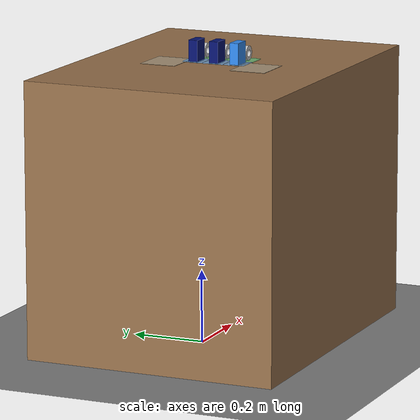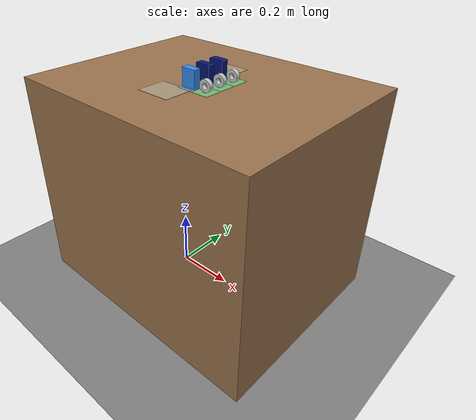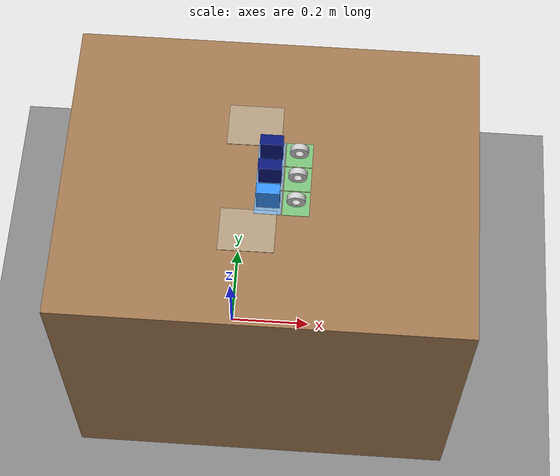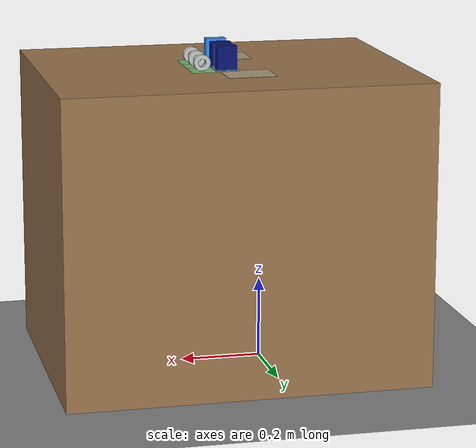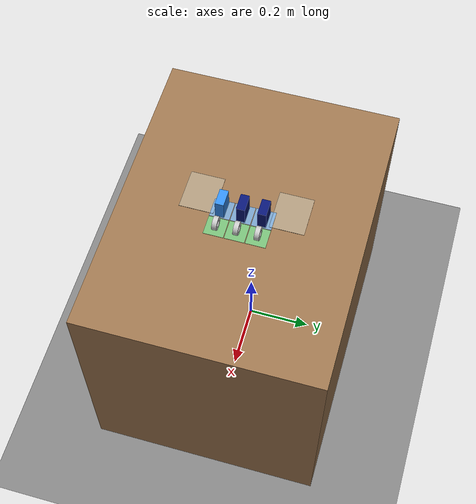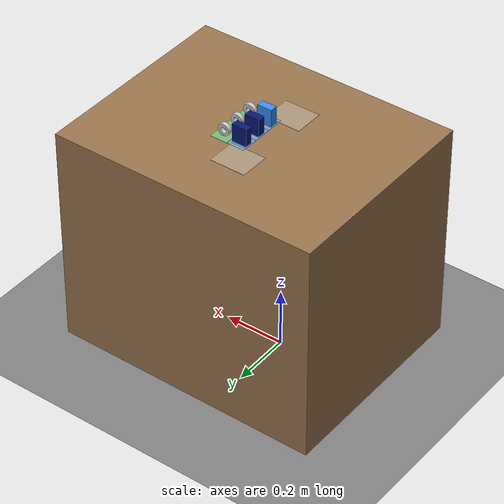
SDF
<?xml version="1.0"?>
<!--
  Experiment 3 - Group 5 sorting simulation world

  Grid 1-3 : Square (gum boxes)
  Grid 4-6 : Circle (tape rolls)

  Bin 1 : Square
  Bin 2 : Circle

  Table top z = 0.750 m
-->
<sdf version="1.8">
  <world name="grasp_world">

    <physics name="default" type="ignored">
      <max_step_size>0.004</max_step_size>
      <real_time_factor>1.0</real_time_factor>
    </physics>

    <plugin filename="libignition-gazebo-physics-system.so"
            name="ignition::gazebo::systems::Physics"/>

    <plugin filename="libignition-gazebo-scene-broadcaster-system.so"
            name="ignition::gazebo::systems::SceneBroadcaster"/>

    <!-- Experiment 3 RGB camera sensor support -->
    <plugin filename="libignition-gazebo-sensors-system.so"
            name="ignition::gazebo::systems::Sensors">
      <render_engine>ogre2</render_engine>
    </plugin>

    <plugin filename="libignition-gazebo-user-commands-system.so"
            name="ignition::gazebo::systems::UserCommands"/>

    <light type="directional" name="sun">
      <cast_shadows>false</cast_shadows>
      <pose>0 0 10 0 0 0</pose>
      <diffuse>0.9 0.9 0.9 1</diffuse>
      <direction>-0.3 0.2 -0.9</direction>
    </light>

    <model name="ground">
      <static>true</static>
      <link name="ground_link">
        <collision name="c">
          <geometry>
            <plane>
              <normal>0 0 1</normal>
              <size>10 10</size>
            </plane>
          </geometry>
        </collision>

        <visual name="v">
          <geometry>
            <plane>
              <normal>0 0 1</normal>
              <size>10 10</size>
            </plane>
          </geometry>
          <material>
            <ambient>0.5 0.5 0.5 1</ambient>
            <diffuse>0.5 0.5 0.5 1</diffuse>
          </material>
        </visual>
      </link>
    </model>

    <!-- Visible 2x3 Grid markers - visual only, no collision -->

    <model name="grid_markers">
      <static>true</static>
      <link name="grid_visuals">

        <!-- Grid 1 -->
        <visual name="grid1">
          <pose>0.10 0.06 0.751 0 0 0</pose>
          <geometry><box><size>0.058 0.058 0.002</size></box></geometry>
          <material>
            <ambient>0.45 0.70 0.95 0.75</ambient>
            <diffuse>0.45 0.70 0.95 0.75</diffuse>
          </material>
        </visual>

        <!-- Grid 2 -->
        <visual name="grid2">
          <pose>0.10 0.00 0.751 0 0 0</pose>
          <geometry><box><size>0.058 0.058 0.002</size></box></geometry>
          <material>
            <ambient>0.45 0.70 0.95 0.75</ambient>
            <diffuse>0.45 0.70 0.95 0.75</diffuse>
          </material>
        </visual>

        <!-- Grid 3 -->
        <visual name="grid3">
          <pose>0.10 -0.06 0.751 0 0 0</pose>
          <geometry><box><size>0.058 0.058 0.002</size></box></geometry>
          <material>
            <ambient>0.45 0.70 0.95 0.75</ambient>
            <diffuse>0.45 0.70 0.95 0.75</diffuse>
          </material>
        </visual>

        <!-- Grid 4 -->
        <visual name="grid4">
          <pose>0.16 0.06 0.751 0 0 0</pose>
          <geometry><box><size>0.058 0.058 0.002</size></box></geometry>
          <material>
            <ambient>0.45 0.85 0.55 0.75</ambient>
            <diffuse>0.45 0.85 0.55 0.75</diffuse>
          </material>
        </visual>

        <!-- Grid 5 -->
        <visual name="grid5">
          <pose>0.16 0.00 0.751 0 0 0</pose>
          <geometry><box><size>0.058 0.058 0.002</size></box></geometry>
          <material>
            <ambient>0.45 0.85 0.55 0.75</ambient>
            <diffuse>0.45 0.85 0.55 0.75</diffuse>
          </material>
        </visual>

        <!-- Grid 6 -->
        <visual name="grid6">
          <pose>0.16 -0.06 0.751 0 0 0</pose>
          <geometry><box><size>0.058 0.058 0.002</size></box></geometry>
          <material>
            <ambient>0.45 0.85 0.55 0.75</ambient>
            <diffuse>0.45 0.85 0.55 0.75</diffuse>
          </material>
        </visual>

      </link>
    </model>

    <!-- ================= TABLE ================= -->

    <model name="table">
      <static>true</static>
      <pose>0.1 0 0.375 0 0 0</pose>

      <link name="table_link">
        <collision name="c">
          <geometry>
            <box><size>0.9 0.7 0.75</size></box>
          </geometry>
        </collision>

        <visual name="v">
          <geometry>
            <box><size>0.9 0.7 0.75</size></box>
          </geometry>
          <material>
            <ambient>0.6 0.45 0.3 1</ambient>
            <diffuse>0.6 0.45 0.3 1</diffuse>
          </material>
        </visual>
      </link>
    </model>

    <!-- GRID 1 : dark-blue Square, 5 x 1.5 x 9 cm -->

    <model name="grid1_square">
      <pose>0.10 0.06 0.780 0 0 0</pose>
      <link name="body">
        <inertial>
          <mass>0.05</mass>
          <inertia>
            <ixx>3.46875e-5</ixx>
            <iyy>4.41667e-5</iyy>
            <izz>1.13542e-5</izz>
            <ixy>0</ixy>
            <ixz>0</ixz>
            <iyz>0</iyz>
          </inertia>
        </inertial>

        <collision name="c">
          <geometry>
            <box><size>0.050 0.025 0.060</size></box>
          </geometry>
          <surface>
            <friction>
              <ode>
                <mu>2.0</mu>
                <mu2>2.0</mu2>
              </ode>
            </friction>
          </surface>
        </collision>

        <visual name="v">
          <geometry>
            <box><size>0.050 0.025 0.060</size></box>
          </geometry>
          <material>
            <ambient>0.03 0.08 0.45 1</ambient>
            <diffuse>0.03 0.08 0.45 1</diffuse>
          </material>
        </visual>

</link>
    </model>

    <!-- GRID 2 : dark-blue Square -->

    <model name="grid2_square">
      <pose>0.10 0.00 0.780 0 0 0</pose>
      <link name="body">
        <inertial><mass>0.05</mass></inertial>

        <collision name="c">
          <geometry>
            <box><size>0.050 0.025 0.060</size></box>
          </geometry>
        </collision>

        <visual name="v">
          <geometry>
            <box><size>0.050 0.025 0.060</size></box>
          </geometry>
          <material>
            <ambient>0.03 0.08 0.45 1</ambient>
            <diffuse>0.03 0.08 0.45 1</diffuse>
          </material>
        </visual>
      </link>
    </model>

    <!-- GRID 3 : light-blue Square -->

    <model name="grid3_square">
      <pose>0.10 -0.06 0.780 0 0 0</pose>
      <link name="body">
        <inertial><mass>0.05</mass></inertial>

        <collision name="c">
          <geometry>
            <box><size>0.050 0.025 0.060</size></box>
          </geometry>
        </collision>

        <visual name="v">
          <geometry>
            <box><size>0.050 0.025 0.060</size></box>
          </geometry>
          <material>
            <ambient>0.20 0.55 0.95 1</ambient>
            <diffuse>0.20 0.55 0.95 1</diffuse>
          </material>
        </visual>
      </link>
    </model>

    <!-- GRID 4 : gray Circle / tape roll -->
    <!-- Cylinder rotated 90 deg so it stands on its edge -->
    <!-- diameter 4 cm, width 1.8 cm -->

    <model name="grid4_circle">
      <pose>0.16 0.06 0.770 1.5708 0 0</pose>
      <link name="body">
        <inertial><mass>0.03</mass></inertial>

        <collision name="c">
          <geometry>
            <cylinder>
              <radius>0.020</radius>
              <length>0.025</length>
            </cylinder>
          </geometry>
        </collision>

        <!-- G4 real annular tape visual -->
        <visual name="real_tape_ring">
          <geometry>
            <mesh>
              <uri>model://tape_ring/meshes/tape_ring.stl</uri>
            </mesh>
          </geometry>
          <material>
            <ambient>0.72 0.72 0.72 1</ambient>
            <diffuse>0.78 0.78 0.78 1</diffuse>
            <specular>0.25 0.25 0.25 1</specular>
          </material>
        </visual>
</link>
    </model>

    <!-- GRID 5 : green Circle / tape roll, width 1.2 cm -->

    <model name="grid5_circle">
      <pose>0.16 0.00 0.770 1.5708 0 0</pose>
      <link name="body">
        <inertial><mass>0.03</mass></inertial>

        <collision name="c">
          <geometry>
            <cylinder>
              <radius>0.020</radius>
              <length>0.025</length>
            </cylinder>
          </geometry>
        </collision>

        <!-- G4 real annular tape visual -->
        <visual name="real_tape_ring">
          <geometry>
            <mesh>
              <uri>model://tape_ring/meshes/tape_ring.stl</uri>
            </mesh>
          </geometry>
          <material>
            <ambient>0.72 0.72 0.72 1</ambient>
            <diffuse>0.78 0.78 0.78 1</diffuse>
            <specular>0.25 0.25 0.25 1</specular>
          </material>
        </visual>
</link>
    </model>

    <!-- GRID 6 : green Circle / tape roll, width 1.2 cm -->

    <model name="grid6_circle">
      <pose>0.16 -0.06 0.770 1.5708 0 0</pose>
      <link name="body">
        <inertial><mass>0.03</mass></inertial>

        <collision name="c">
          <geometry>
            <cylinder>
              <radius>0.020</radius>
              <length>0.025</length>
            </cylinder>
          </geometry>
        </collision>

        <!-- G4 real annular tape visual -->
        <visual name="real_tape_ring">
          <geometry>
            <mesh>
              <uri>model://tape_ring/meshes/tape_ring.stl</uri>
            </mesh>
          </geometry>
          <material>
            <ambient>0.72 0.72 0.72 1</ambient>
            <diffuse>0.78 0.78 0.78 1</diffuse>
            <specular>0.25 0.25 0.25 1</specular>
          </material>
        </visual>
</link>
    </model>

    <!-- BIN 1 : Square classification zone -->

    <model name="square_bin">
      <static>true</static>
      <pose>0.06 0.13 0.7505 0 0 0</pose>
      <link name="body">
        <collision name="c">
          <geometry>
            <box><size>0.12 0.10 0.001</size></box>
          </geometry>
        </collision>

        <visual name="v">
          <geometry>
            <box><size>0.12 0.10 0.001</size></box>
          </geometry>
          <material>
            <ambient>0.66 0.58 0.47 1</ambient>
            <diffuse>0.66 0.58 0.47 1</diffuse>
          </material>
        </visual>
      </link>
    </model>

    <!-- BIN 2 : Circle classification zone -->

    <model name="circle_bin">
      <static>true</static>
      <pose>0.06 -0.13 0.7505 0 0 0</pose>
      <link name="body">
        <collision name="c">
          <geometry>
            <box><size>0.12 0.10 0.001</size></box>
          </geometry>
        </collision>

        <visual name="v">
          <geometry>
            <box><size>0.12 0.10 0.001</size></box>
          </geometry>
          <material>
            <ambient>0.66 0.58 0.47 1</ambient>
            <diffuse>0.66 0.58 0.47 1</diffuse>
          </material>
        </visual>
      </link>
    </model>

    <!-- Experiment 3 fixed overhead RGB simulation camera -->
    <model name="experiment3_overhead_camera">
      <static>true</static>

      <!-- Camera is above the table and points vertically downward. -->
      <pose>0.72 0.28 1.22 0 0.62 -2.72</pose>

      <link name="camera_link">
        <sensor name="rgb_camera" type="camera">
          <always_on>true</always_on>
          <update_rate>15</update_rate>

          <topic>/experiment3_camera/image_raw</topic>

          <camera>
            <horizontal_fov>0.80</horizontal_fov>

            <image>
              <width>640</width>
              <height>480</height>
              <format>R8G8B8</format>
            </image>

            <clip>
              <near>0.05</near>
              <far>5.0</far>
            </clip>
          </camera>
        </sensor>
      </link>
    </model>

  </world>
</sdf>
